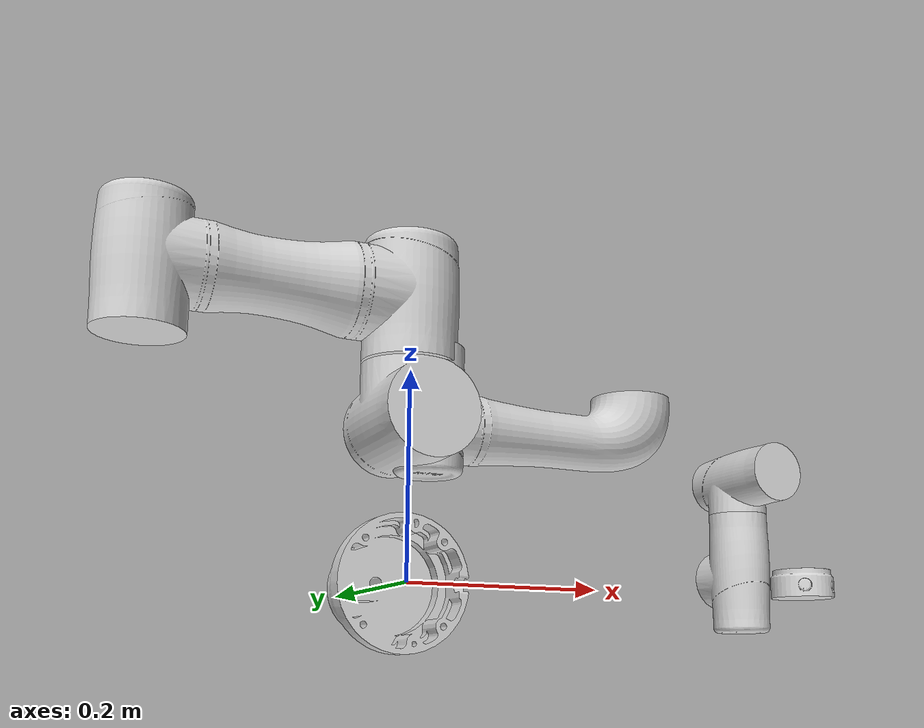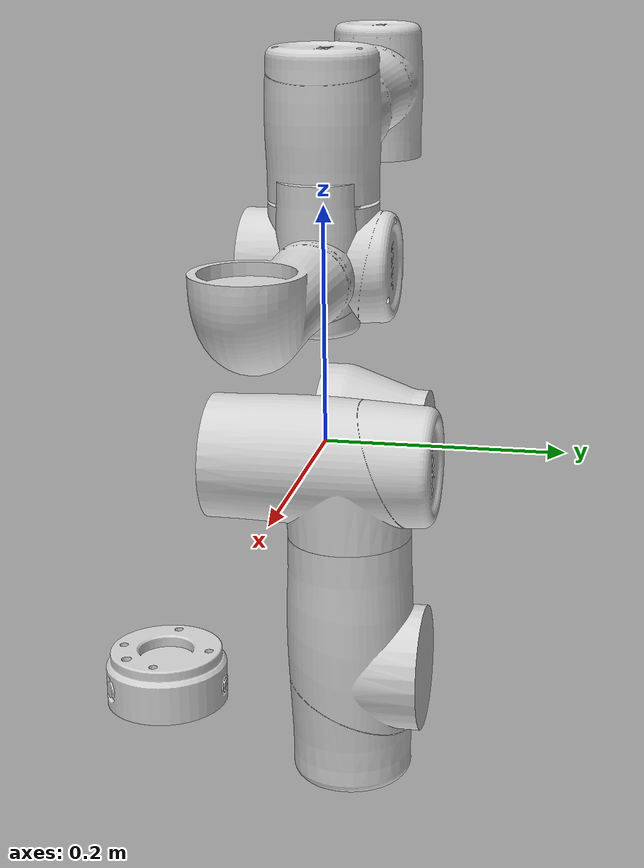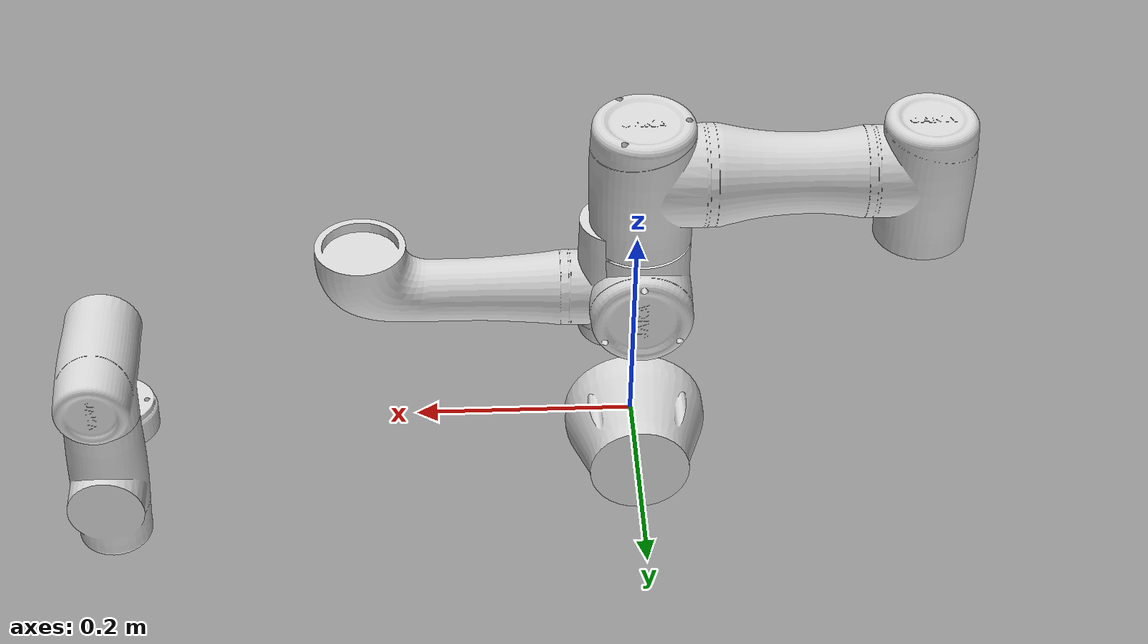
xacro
<?xml version="1.0"?>
<robot xmlns:xacro="http://www.ros.org/wiki/xacro" name="jaka_zu3">
    <xacro:arg name="initial_positions_file" default="initial_positions.yaml" />

    <!-- Import jaka_zu3 urdf file -->
    <xacro:include filename="$(find jaka_description)/urdf/jaka_zu3.urdf" />

    <!-- Import control_xacro -->
    <xacro:include filename="jaka_zu3.ros2_control.xacro" />

    <xacro:jaka_zu3_ros2_control name="jaka_zu3_hardware" initial_positions_file="$(arg initial_positions_file)"/>

</robot>

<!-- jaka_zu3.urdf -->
<robot name="jaka_zu3">

    <!-- LINK -->
    <link name="world" />

    <link name="Link_0">
        <inertial>
            <origin xyz="-0.0015666 1.7294E-05 0.05088" rpy="0 0 0" />
            <mass value="3.6417" />
            <inertia ixx="0.0050627" ixy="-6.9042E-07" ixz="-8.4162E-05" iyy="0.0051147" iyz="2.9665E-06" izz="0.006537" />
        </inertial>

        <visual>
            <origin xyz="0 0 0" rpy="0 0 0" />
            <geometry>
                <mesh filename="package://jaka_description/meshes/jaka_zu3_meshes/Link_0.STL" />
            </geometry>
            <material name="">
                <color rgba="0.84706 0.84706 0.84706 1" />
            </material>
        </visual>
        <collision>
            <origin xyz="0 0 0" rpy="0 0 0" />
            <geometry>
                <mesh filename="package://jaka_description/meshes/jaka_zu3_meshes/Link_0.STL" />
            </geometry>
        </collision>
    </link>

    <link name="Link_1">
        <inertial>
            <origin xyz="-3.8197E-07 0.0039623 -0.0033438" rpy="0 0 0" />
            <mass value="7.0387" />
            <inertia ixx="0.012561" ixy="8.1417E-08" ixz="-1.8051E-08" iyy="0.011919" iyz="-8.7195E-05" izz="0.0085506" />
        </inertial>

        <visual>
            <origin xyz="0 0 0" rpy="0 0 0" />
            <geometry>
                <mesh filename="package://jaka_description/meshes/jaka_zu3_meshes/Link_1.STL" />
            </geometry>
            <material name="">
                <color rgba="0.84706 0.84706 0.84706 1" />
            </material>
        </visual>
        <collision>
            <origin xyz="0 0 0" rpy="0 0 0" />
            <geometry>
                <mesh filename="package://jaka_description/meshes/jaka_zu3_meshes/Link_1.STL" />
            </geometry>
        </collision>
    </link>

    <link name="Link_2">
        <inertial>
            <origin xyz="0.11439 -6.6036E-07 -0.11395" rpy="0 0 0" />
            <mass value="18.247" />
            <inertia ixx="0.025431" ixy="1.2399E-06" ixz="-0.0016148" iyy="0.21741" iyz="-2.144E-08" izz="0.20927" />
        </inertial>

        <visual>
            <origin xyz="0 0 0" rpy="0 0 0" />
            <geometry>
                <mesh filename="package://jaka_description/meshes/jaka_zu3_meshes/Link_2.STL" />
            </geometry>
            <material name="">
                <color rgba="0.84706 0.84706 0.84706 1" />
            </material>
        </visual>
        <collision>
            <origin xyz="0 0 0" rpy="0 0 0" />
            <geometry>
                <mesh filename="package://jaka_description/meshes/jaka_zu3_meshes/Link_2.STL" />
            </geometry>
        </collision>
    </link>

    <link name="Link_3">
        <inertial>
            <origin xyz="0.13218 1.2348E-05 -0.0083734" rpy="0 0 0" />
            <mass value="9.5247" />
            <inertia ixx="0.0094701" ixy="7.4928E-07" ixz="-0.0012353" iyy="0.088902" iyz="6.5058E-08" izz="0.084947" />
        </inertial>

        <visual>
            <origin xyz="0 0 0" rpy="0 0 0" />
            <geometry>
                <mesh filename="package://jaka_description/meshes/jaka_zu3_meshes/Link_3.STL" />
            </geometry>
            <material name="">
                <color rgba="0.84706 0.84706 0.84706 1" />
            </material>
        </visual>
        <collision>
            <origin xyz="0 0 0" rpy="0 0 0" />
            <geometry>
                <mesh filename="package://jaka_description/meshes/jaka_zu3_meshes/Link_3.STL" />
            </geometry>
        </collision>
    </link>

    <link name="Link_4">
        <inertial>
            <origin xyz="6.5068E-08 -0.014052 0.0031614" rpy="0 0 0" />
            <mass value="3.8728" />
            <inertia ixx="0.0058546" ixy="-1.505E-08" ixz="-1.7928E-08" iyy="0.0025893" iyz="-0.00019825" izz="0.0056328" />
        </inertial>

        <visual>
            <origin xyz="0 0 0" rpy="0 0 0" />
            <geometry>
                <mesh filename="package://jaka_description/meshes/jaka_zu3_meshes/Link_4.STL" />
            </geometry>
            <material name="">
                <color rgba="0.84706 0.84706 0.84706 1" />
            </material>
        </visual>
        <collision>
            <origin xyz="0 0 0" rpy="0 0 0" />
            <geometry>
                <mesh filename="package://jaka_description/meshes/jaka_zu3_meshes/Link_4.STL" />
            </geometry>
        </collision>
    </link>

    <link name="Link_5">
        <inertial>
            <origin xyz="7.9256E-08 0.0068655 -0.0029086" rpy="0 0 0" />
            <mass value="4.3241" />
            <inertia ixx="0.007903" ixy="4.9677E-09" ixz="1.0083E-08" iyy="0.0028281" iyz="-0.00013094" izz="0.0076792" />
        </inertial>

        <visual>
            <origin xyz="0 0 0" rpy="0 0 0" />
            <geometry>
                <mesh filename="package://jaka_description/meshes/jaka_zu3_meshes/Link_5.STL" />
            </geometry>
            <material name="">
                <color rgba="0.84706 0.84706 0.84706 1" />
            </material>
        </visual>
        <collision>
            <origin xyz="0 0 0" rpy="0 0 0" />
            <geometry>
                <mesh filename="package://jaka_description/meshes/jaka_zu3_meshes/Link_5.STL" />
            </geometry>
        </collision>
    </link>

    <link name="Link_6">
        <inertial>
            <origin xyz="4.9731E-05 -2.965E-05 -0.016372" rpy="0 0 0" />
            <mass value="0.7876" />
            <inertia ixx="0.00028184" ixy="-6.9755E-07" ixz="-4.4645E-07" iyy="0.00028506" iyz="6.0031E-07" izz="0.00045635" />
        </inertial>

        <visual>
            <origin xyz="0 0 0" rpy="0 0 0" />
            <geometry>
                <mesh filename="package://jaka_description/meshes/jaka_zu3_meshes/Link_6.STL" />
            </geometry>
            <material name="">
                <color rgba="0.84706 0.84706 0.84706 1" />
            </material>
        </visual>
        <collision>
            <origin xyz="0 0 0" rpy="0 0 0" />
            <geometry>
                <mesh filename="package://jaka_description/meshes/jaka_zu3_meshes/Link_6.STL" />
            </geometry>
        </collision>
    </link>

    <!-- JOINT -->
    <joint name="fixed" type="fixed">
        <parent link="world" />
        <origin xyz="-0.002 0 -0.00001" rpy="0 0 0" />
        <child link="Link_0" />
    </joint>

    <joint name="joint_1" type="revolute">
        <origin xyz="0 0 0.15055" rpy="0 0 0" />
        <parent link="Link_0" />
        <child link="Link_1" />
        <axis xyz="0 0 1" />
        <limit lower="-6.28" upper="6.28" effort="2000" velocity="3.14" />
    </joint>

    <joint name="joint_2" type="revolute">
        <origin xyz="0 0 0" rpy="1.5708 0 0" />
        <parent link="Link_1" />
        <child link="Link_2" />
        <axis xyz="0 0 1" />
        <limit lower="-1.48" upper="4.62" effort="1500" velocity="3.14" />
    </joint>

    <joint name="joint_3" type="revolute">
        <origin xyz="0.248 0 0" rpy="0 0 0" />
        <parent link="Link_2" />
        <child link="Link_3" />
        <axis xyz="0 0 1" />
        <limit lower="-3.05" upper="3.05" effort="1500" velocity="3.14" />
    </joint>

    <joint name="joint_4" type="revolute">
        <origin xyz="0.228 1.1925E-05 -0.115" rpy="0 0 0" />
        <parent link="Link_3" />
        <child link="Link_4" />
        <axis xyz="0 0 1" />
        <limit lower="-1.48" upper="4.62" effort="1000" velocity="3.84" />
    </joint>

    <joint name="joint_5" type="revolute">
        <origin xyz="0 -0.1175 0" rpy="1.5708 0 0" />
        <parent link="Link_4" />
        <child link="Link_5" />
        <axis xyz="0 0 1" />
        <limit lower="-6.28" upper="6.28" effort="1000" velocity="3.84" />
    </joint>

        <joint name="joint_6" type="revolute">
        <origin xyz="0 0.1065 0" rpy="-1.5708 0 0" />
        <parent link="Link_5" />
        <child link="Link_6" />
        <axis xyz="0 0 1" />
        <limit lower="-6.28" upper="6.28" effort="1000" velocity="3.84" />
    </joint>

    <transmission name="trans_joint_1">
        <type>transmission_interface/SimpleTransmission</type>
        <joint name="joint_1">
            <hardwareInterface>hardware_interface/PositionJointInterface</hardwareInterface>
        </joint>
        <actuator name="joint_1_motor">
            <hardwareInterface>hardware_interface/PositionJointInterface</hardwareInterface>
            <mechanicalReduction>1</mechanicalReduction>
        </actuator>
    </transmission>
    <transmission name="trans_joint_2">
        <type>transmission_interface/SimpleTransmission</type>
        <joint name="joint_2">
            <hardwareInterface>hardware_interface/PositionJointInterface</hardwareInterface>
        </joint>
        <actuator name="joint_2_motor">
            <hardwareInterface>hardware_interface/PositionJointInterface</hardwareInterface>
            <mechanicalReduction>1</mechanicalReduction>
        </actuator>
    </transmission>
    <transmission name="trans_joint_3">
        <type>transmission_interface/SimpleTransmission</type>
        <joint name="joint_3">
            <hardwareInterface>hardware_interface/PositionJointInterface</hardwareInterface>
        </joint>
        <actuator name="joint_3_motor">
            <hardwareInterface>hardware_interface/PositionJointInterface</hardwareInterface>
            <mechanicalReduction>1</mechanicalReduction>
        </actuator>
    </transmission>
    <transmission name="trans_joint_4">
        <type>transmission_interface/SimpleTransmission</type>
        <joint name="joint_4">
            <hardwareInterface>hardware_interface/PositionJointInterface</hardwareInterface>
        </joint>
        <actuator name="joint_4_motor">
            <hardwareInterface>hardware_interface/PositionJointInterface</hardwareInterface>
            <mechanicalReduction>1</mechanicalReduction>
        </actuator>
    </transmission>
    <transmission name="trans_joint_5">
        <type>transmission_interface/SimpleTransmission</type>
        <joint name="joint_5">
            <hardwareInterface>hardware_interface/PositionJointInterface</hardwareInterface>
        </joint>
        <actuator name="joint_5_motor">
            <hardwareInterface>hardware_interface/PositionJointInterface</hardwareInterface>
            <mechanicalReduction>1</mechanicalReduction>
        </actuator>
    </transmission>
    <transmission name="trans_joint_6">
        <type>transmission_interface/SimpleTransmission</type>
        <joint name="joint_6">
            <hardwareInterface>hardware_interface/PositionJointInterface</hardwareInterface>
        </joint>
        <actuator name="joint_6_motor">
            <hardwareInterface>hardware_interface/PositionJointInterface</hardwareInterface>
            <mechanicalReduction>1</mechanicalReduction>
        </actuator>
    </transmission>
    <gazebo>
        <plugin name="gazebo_ros2_control" filename="libgazebo_ros2_control.so">
            <robotNamespace>/</robotNamespace>
        </plugin>
    </gazebo>
</robot>
